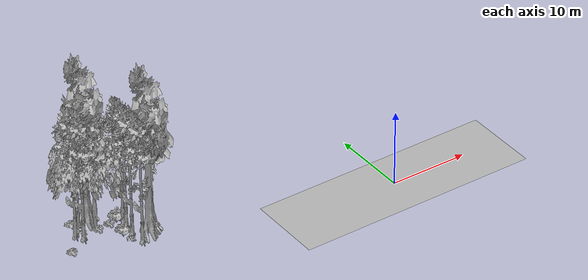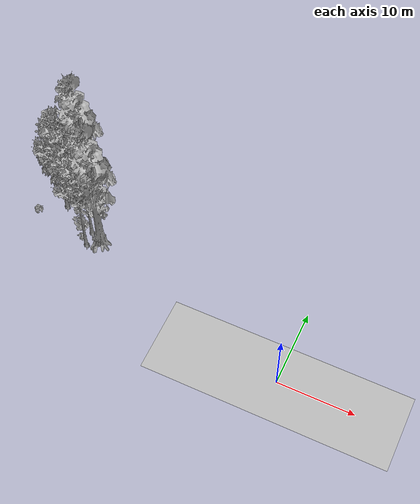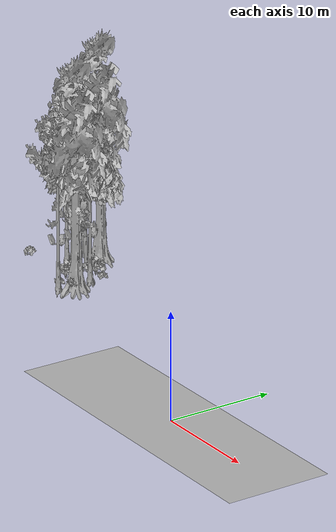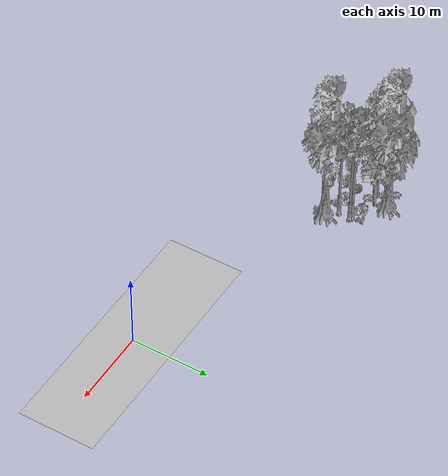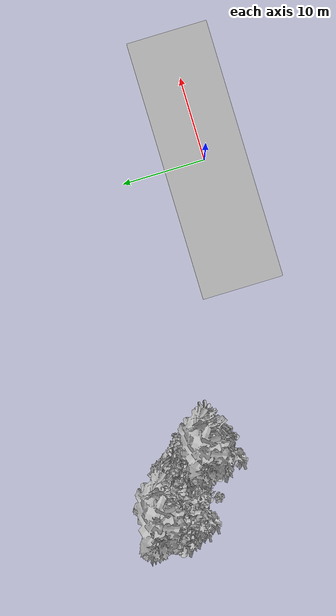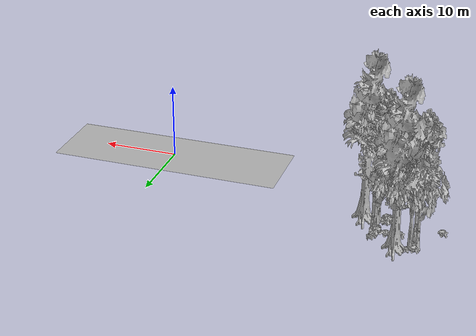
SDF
<sdf version="1.7">
 <world name="default">
  <model name="ground_plane">
   <static>1</static>
   <link name="link">
    <collision name="collision">
     <geometry><plane><normal>0 0 1</normal><size>100 100</size></plane></geometry>
     <surface><contact><ode><min_depth>0.01</min_depth><max_vel>0</max_vel></ode></contact></surface>
    </collision>
    <visual name="grass">
     <cast_shadows>0</cast_shadows>
     <geometry>
      <mesh>
       <scale>0.5814285714285714 0.18142857142857144 0.1</scale>
       <uri>file://grass_plane/meshes/grass_plane.dae</uri>
      </mesh>
     </geometry>
    </visual>
   </link>
  </model>
  <model name="Tree 78">
   <static>1</static>
   <pose>-35.1878954433289 13.728446696148207 0 1.57079 -0 0</pose>
   <link name="link">
    <collision name="collision">
     <geometry><mesh><scale>3.5 5 3.5</scale><uri>model://tree_2/meshes/tree_2.obj</uri></mesh></geometry>
    </collision>
    <visual name="visual">
     <geometry><mesh><scale>3.5 5 3.5</scale><uri>model://tree_2/meshes/tree_2.obj</uri></mesh></geometry>
    </visual>
   </link>
  </model>
  <model name="Tree 86">
   <static>1</static>
   <pose>-30.427389092039473 11.394425013323918 0 1.57079 -0 0</pose>
   <link name="link">
    <collision name="collision">
     <geometry><mesh><scale>3.5 5 3.5</scale><uri>model://tree_9/meshes/tree_9.obj</uri></mesh></geometry>
    </collision>
    <visual name="visual">
     <geometry><mesh><scale>3.5 5 3.5</scale><uri>model://tree_9/meshes/tree_9.obj</uri></mesh></geometry>
    </visual>
   </link>
  </model>
  <model name="Tree 204">
   <static>1</static>
   <pose>-30.133917948965866 7.72430626128423 0 1.57079 -0 0</pose>
   <link name="link">
    <collision name="collision">
     <geometry><mesh><scale>3.5 5 3.5</scale><uri>model://tree_9/meshes/tree_9.obj</uri></mesh></geometry>
    </collision>
    <visual name="visual">
     <geometry><mesh><scale>3.5 5 3.5</scale><uri>model://tree_9/meshes/tree_9.obj</uri></mesh></geometry>
    </visual>
   </link>
  </model>
  <model name="Tree 206">
   <static>1</static>
   <pose>-28.519963519838484 8.679450311342709 0 1.57079 -0 0</pose>
   <link name="link">
    <collision name="collision">
     <geometry><mesh><scale>3.5 5 3.5</scale><uri>model://tree_4/meshes/tree_4.obj</uri></mesh></geometry>
    </collision>
    <visual name="visual">
     <geometry><mesh><scale>3.5 5 3.5</scale><uri>model://tree_4/meshes/tree_4.obj</uri></mesh></geometry>
    </visual>
   </link>
  </model>
  <model name="Tree 250">
   <static>1</static>
   <pose>-33.48206519956831 14.526195424327664 0 1.57079 -0 0</pose>
   <link name="link">
    <collision name="collision">
     <geometry><mesh><scale>3.5 5 3.5</scale><uri>model://tree_4/meshes/tree_4.obj</uri></mesh></geometry>
    </collision>
    <visual name="visual">
     <geometry><mesh><scale>3.5 5 3.5</scale><uri>model://tree_4/meshes/tree_4.obj</uri></mesh></geometry>
    </visual>
   </link>
  </model>
  <model name="Tree 259">
   <static>1</static>
   <pose>-30.121459793115783 11.201719735133448 0 1.57079 -0 0</pose>
   <link name="link">
    <collision name="collision">
     <geometry><mesh><scale>3.5 5 3.5</scale><uri>model://tree_9/meshes/tree_9.obj</uri></mesh></geometry>
    </collision>
    <visual name="visual">
     <geometry><mesh><scale>3.5 5 3.5</scale><uri>model://tree_9/meshes/tree_9.obj</uri></mesh></geometry>
    </visual>
   </link>
  </model>
  <model name="Tree 267">
   <static>1</static>
   <pose>-33.38749814652951 12.772759363126575 0 1.57079 -0 0</pose>
   <link name="link">
    <collision name="collision">
     <geometry><mesh><scale>3.5 5 3.5</scale><uri>model://tree_2/meshes/tree_2.obj</uri></mesh></geometry>
    </collision>
    <visual name="visual">
     <geometry><mesh><scale>3.5 5 3.5</scale><uri>model://tree_2/meshes/tree_2.obj</uri></mesh></geometry>
    </visual>
   </link>
  </model>
  <model name="Tree 350">
   <static>1</static>
   <pose>-35.411583985823526 11.99386481581628 0 1.57079 -0 0</pose>
   <link name="link">
    <collision name="collision">
     <geometry><mesh><scale>3.5 5 3.5</scale><uri>model://tree_9/meshes/tree_9.obj</uri></mesh></geometry>
    </collision>
    <visual name="visual">
     <geometry><mesh><scale>3.5 5 3.5</scale><uri>model://tree_9/meshes/tree_9.obj</uri></mesh></geometry>
    </visual>
   </link>
  </model>
  <model name="Tree 414">
   <static>1</static>
   <pose>-35.91403672459337 12.981171327646578 0 1.57079 -0 0</pose>
   <link name="link">
    <collision name="collision">
     <geometry><mesh><scale>3.5 5 3.5</scale><uri>model://tree_9/meshes/tree_9.obj</uri></mesh></geometry>
    </collision>
    <visual name="visual">
     <geometry><mesh><scale>3.5 5 3.5</scale><uri>model://tree_9/meshes/tree_9.obj</uri></mesh></geometry>
    </visual>
   </link>
  </model>
  <model name="Tree 421">
   <static>1</static>
   <pose>-30.333241012511515 9.636542645453428 0 1.57079 -0 0</pose>
   <link name="link">
    <collision name="collision">
     <geometry><mesh><scale>3.5 5 3.5</scale><uri>model://tree_9/meshes/tree_9.obj</uri></mesh></geometry>
    </collision>
    <visual name="visual">
     <geometry><mesh><scale>3.5 5 3.5</scale><uri>model://tree_9/meshes/tree_9.obj</uri></mesh></geometry>
    </visual>
   </link>
  </model>
  <model name="Bush 37">
   <static>1</static>
   <pose>-31.884821683683555 11.987945248599825 0 1.57079 -0 0</pose>
   <link name="link">
    <collision name="collision">
     <geometry><mesh><scale>2 2 2</scale><uri>model://bush_3/meshes/bush_3.obj</uri></mesh></geometry>
     <surface><contact><collide_without_contact>false</collide_without_contact></contact></surface>
    </collision>
    <visual name="visual">
     <geometry><mesh><scale>2 2 2</scale><uri>model://bush_3/meshes/bush_3.obj</uri></mesh></geometry>
    </visual>
   </link>
  </model>
  <model name="Bush 48">
   <static>1</static>
   <pose>-30.275525431851907 12.58919460836497 0 1.57079 -0 0</pose>
   <link name="link">
    <collision name="collision">
     <geometry><mesh><scale>2 2 2</scale><uri>model://bush_2/meshes/bush_2.obj</uri></mesh></geometry>
     <surface><contact><collide_without_contact>false</collide_without_contact></contact></surface>
    </collision>
    <visual name="visual">
     <geometry><mesh><scale>2 2 2</scale><uri>model://bush_2/meshes/bush_2.obj</uri></mesh></geometry>
    </visual>
   </link>
  </model>
  <model name="Bush 61">
   <static>1</static>
   <pose>-34.85284296056472 14.077186759123439 0 1.57079 -0 0</pose>
   <link name="link">
    <collision name="collision">
     <geometry><mesh><scale>2 2 2</scale><uri>model://bush_2/meshes/bush_2.obj</uri></mesh></geometry>
     <surface><contact><collide_without_contact>false</collide_without_contact></contact></surface>
    </collision>
    <visual name="visual">
     <geometry><mesh><scale>2 2 2</scale><uri>model://bush_2/meshes/bush_2.obj</uri></mesh></geometry>
    </visual>
   </link>
  </model>
  <model name="Bush 116">
   <static>1</static>
   <pose>-38.32173253061108 9.796011739338049 0 1.57079 -0 0</pose>
   <link name="link">
    <collision name="collision">
     <geometry><mesh><scale>2 2 2</scale><uri>model://bush_3/meshes/bush_3.obj</uri></mesh></geometry>
     <surface><contact><collide_without_contact>false</collide_without_contact></contact></surface>
    </collision>
    <visual name="visual">
     <geometry><mesh><scale>2 2 2</scale><uri>model://bush_3/meshes/bush_3.obj</uri></mesh></geometry>
    </visual>
   </link>
  </model>
  <model name="Bush 157">
   <static>1</static>
   <pose>-30.791934213912334 12.216044254094626 0 1.57079 -0 0</pose>
   <link name="link">
    <collision name="collision">
     <geometry><mesh><scale>2 2 2</scale><uri>model://bush_1/meshes/bush_1.obj</uri></mesh></geometry>
     <surface><contact><collide_without_contact>false</collide_without_contact></contact></surface>
    </collision>
    <visual name="visual">
     <geometry><mesh><scale>2 2 2</scale><uri>model://bush_1/meshes/bush_1.obj</uri></mesh></geometry>
    </visual>
   </link>
  </model>
  <model name="Bush 169">
   <static>1</static>
   <pose>-35.21223755090515 12.671431278876195 0 1.57079 -0 0</pose>
   <link name="link">
    <collision name="collision">
     <geometry><mesh><scale>2 2 2</scale><uri>model://bush_2/meshes/bush_2.obj</uri></mesh></geometry>
     <surface><contact><collide_without_contact>false</collide_without_contact></contact></surface>
    </collision>
    <visual name="visual">
     <geometry><mesh><scale>2 2 2</scale><uri>model://bush_2/meshes/bush_2.obj</uri></mesh></geometry>
    </visual>
   </link>
  </model>
  <model name="Bush 243">
   <static>1</static>
   <pose>-35.66889443228886 14.427543602560814 0 1.57079 -0 0</pose>
   <link name="link">
    <collision name="collision">
     <geometry><mesh><scale>2 2 2</scale><uri>model://bush_3/meshes/bush_3.obj</uri></mesh></geometry>
     <surface><contact><collide_without_contact>false</collide_without_contact></contact></surface>
    </collision>
    <visual name="visual">
     <geometry><mesh><scale>2 2 2</scale><uri>model://bush_3/meshes/bush_3.obj</uri></mesh></geometry>
    </visual>
   </link>
  </model>
  <model name="Bush 262">
   <static>1</static>
   <pose>-33.499186013617674 11.823746571772215 0 1.57079 -0 0</pose>
   <link name="link">
    <collision name="collision">
     <geometry><mesh><scale>2 2 2</scale><uri>model://bush_3/meshes/bush_3.obj</uri></mesh></geometry>
     <surface><contact><collide_without_contact>false</collide_without_contact></contact></surface>
    </collision>
    <visual name="visual">
     <geometry><mesh><scale>2 2 2</scale><uri>model://bush_3/meshes/bush_3.obj</uri></mesh></geometry>
    </visual>
   </link>
  </model>
  <model name="Bush 297">
   <static>1</static>
   <pose>-31.220951595270353 8.47573831476085 0 1.57079 -0 0</pose>
   <link name="link">
    <collision name="collision">
     <geometry><mesh><scale>2 2 2</scale><uri>model://bush_2/meshes/bush_2.obj</uri></mesh></geometry>
     <surface><contact><collide_without_contact>false</collide_without_contact></contact></surface>
    </collision>
    <visual name="visual">
     <geometry><mesh><scale>2 2 2</scale><uri>model://bush_2/meshes/bush_2.obj</uri></mesh></geometry>
    </visual>
   </link>
  </model>
  <model name="Bush 300">
   <static>1</static>
   <pose>-28.14068107727433 8.1868752106842 0 1.57079 -0 0</pose>
   <link name="link">
    <collision name="collision">
     <geometry><mesh><scale>2 2 2</scale><uri>model://bush_5/meshes/bush_5.obj</uri></mesh></geometry>
     <surface><contact><collide_without_contact>false</collide_without_contact></contact></surface>
    </collision>
    <visual name="visual">
     <geometry><mesh><scale>2 2 2</scale><uri>model://bush_5/meshes/bush_5.obj</uri></mesh></geometry>
    </visual>
   </link>
  </model>
  <model name="Bush 325">
   <static>1</static>
   <pose>-31.63377030190029 9.443748189232902 0 1.57079 -0 0</pose>
   <link name="link">
    <collision name="collision">
     <geometry><mesh><scale>2 2 2</scale><uri>model://bush_1/meshes/bush_1.obj</uri></mesh></geometry>
     <surface><contact><collide_without_contact>false</collide_without_contact></contact></surface>
    </collision>
    <visual name="visual">
     <geometry><mesh><scale>2 2 2</scale><uri>model://bush_1/meshes/bush_1.obj</uri></mesh></geometry>
    </visual>
   </link>
  </model>
 </world>
</sdf>
